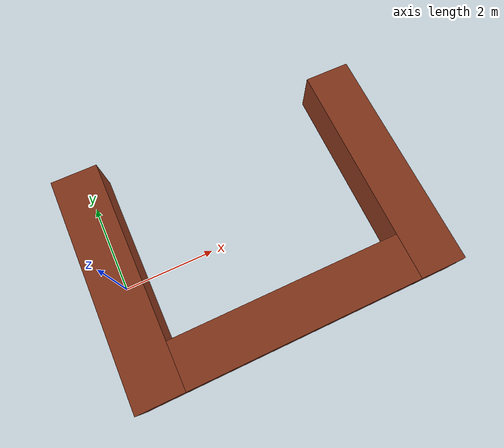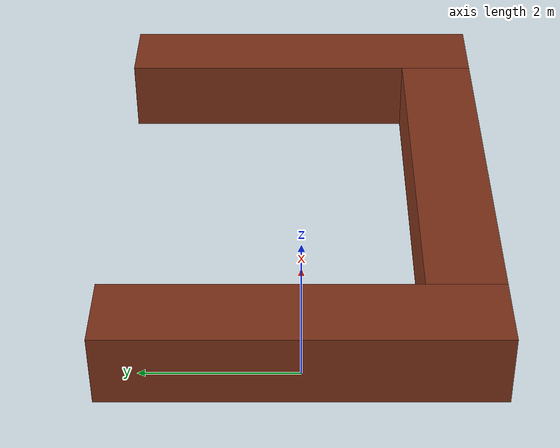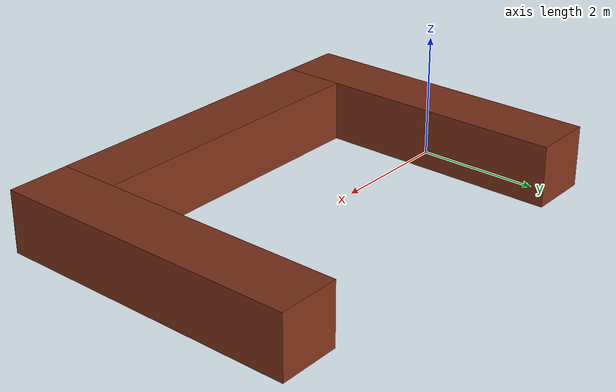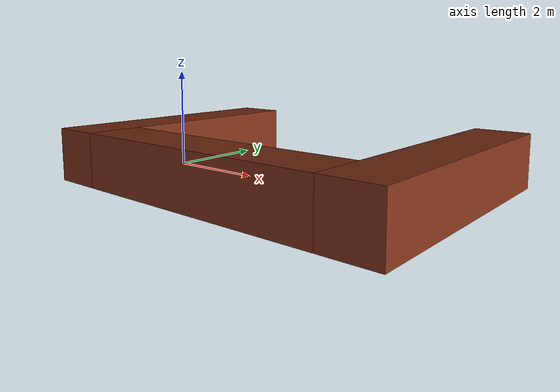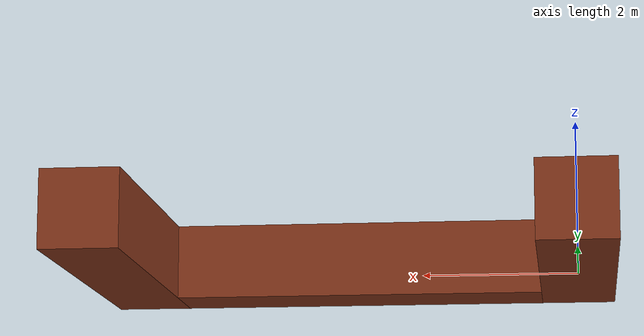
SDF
<?xml version="1.0" encoding="UTF-8"?>
<sdf version="1.4">
  <model name="u_box">
    <static>true</static>
    <link name="u_box">
      <!-- **********************PART1*************************** -->
      <visual name="visual_box">
        <pose>0 0 0.5 0 0 0</pose>
        <geometry>
          <box>
            <size>1 5 1</size>
          </box>
        </geometry>

        <material>
          <ambient>0.5 0.2 0.1 1</ambient>
        </material>
      </visual>
      <collision name="collision_box">
        <pose>0 0 0.5 0 0 0</pose>
        <geometry>
          <box>
            <size>1 5 1</size>
          </box>
        </geometry>
      </collision>

      <!-- **********************PART2*************************** -->
      <visual name="visual_box_2">
        <pose>3 -2 0.5 0 0 0</pose>
        <geometry>
          <box>
            <size>5 1 1</size>
          </box>
        </geometry>

        <material>
          <ambient>0.5 0.2 0.1 1</ambient>
        </material>
      </visual>
      <collision name="collision_box_2">
        <pose>3 -2.5 0.5 0 0 0</pose>
        <geometry>
          <box>
            <size>5 1 1</size>
          </box>
        </geometry>
      </collision>

      <!-- **********************PART3*************************** -->
      <visual name="visual_box_3">
        <pose>6 0 0.5 0 0 0</pose>
        <geometry>
          <box>
            <size>1 5 1</size>
          </box>
        </geometry>

        <material>
          <ambient>0.5 0.2 0.1 1</ambient>
        </material>
      </visual>
      <collision name="collision_box_3">
        <pose>6 0 0.5 0 0 0</pose>
        <geometry>
          <box>
            <size>1 5 1</size>
          </box>
        </geometry>
      </collision>
    </link>
  </model>
</sdf>
